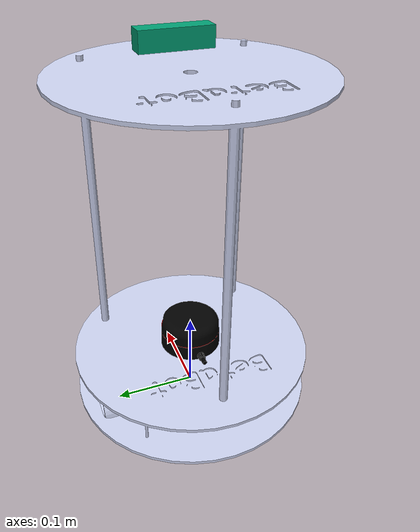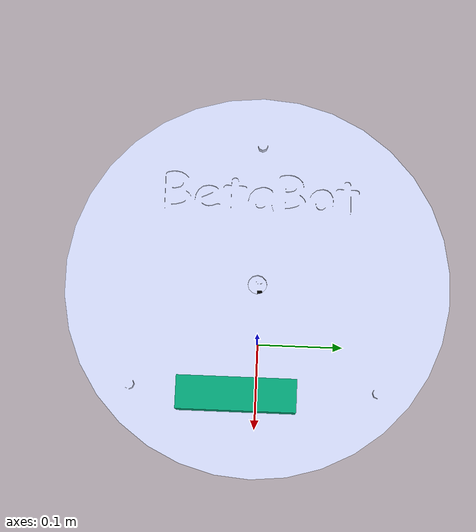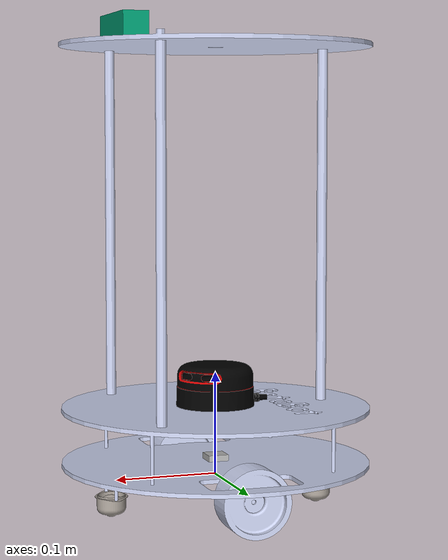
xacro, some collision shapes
<?xml version='1.0'?>

<robot name="betabot" xmlns:xacro="http://www.ros.org/wiki/xacro">

<!-- CALL HEADER FILES FOR MACROS AND GAZEBO PLUGINS -->
  <xacro:include filename="$(find betabot_description)/urdf/betabot.gazebo.xacro" />
  <xacro:include filename="$(find betabot_description)/urdf/common_properties.urdf.xacro" />
  <xacro:include filename="$(find betabot_description)/urdf/macros.xacro" />
  <xacro:include filename="$(find betabot_description)/urdf/betabot_d435_properties.urdf.xacro" />

  <xacro:property name="M_PI" value="3.1415926535897931" />

<!-- ***** BETABOT BASE PART***** -->
  <link name="base_footprint"/>

  <joint name="base_joint" type="fixed">
    <parent link="base_footprint"/>
    <child link="base_link"/>
    <origin xyz="0.0 0.0 0.01" rpy="0 0 0"/>
  </joint>

  <link name="base_link">
    <inertial>
      <origin xyz="0 0 0" rpy="0 0 0"/>
      <mass value="5.67773" />
      <inertia ixx="0.019995" ixy="0.0" ixz="0.0" iyy="0.019995" iyz="0.0" izz="0.03675" />
    </inertial>
    <visual>
      <origin xyz="0 0 0" rpy="0 0 0" />
      <geometry>
        <mesh filename="package://betabot_description/meshes/betabot_base.dae" />
      </geometry>
      <material name="">
        <color rgba="0.79608 0.82353 0.93725 1" />
      </material>
    </visual>
    <!-- COMMENT THE ORGINAL COLLISION MODEL,NEEDS MORE PROCESSING POWER -->

    <!-- SIMPLIFIED COLLISOION MESH FOR FOR SMOOTH PROCESSING -->
    <collision>
      <geometry>
        <cylinder length="0.004" radius="0.15"/>
      </geometry>
      <origin rpy="0 0 0" xyz="0  0 0.05"/>
    </collision>
  </link>

<!-- ***** BETABOT RIGHT WHEEL PART ***** -->
  <link name="right_wheel_link">
    <inertial>
      <origin xyz="0 0 0" rpy="0 0 0"/>
      <mass value="2"/>
      <inertia
        ixx=".08" ixy="0.0" ixz="0.0"
        iyy=".08" iyz="0.0"
        izz=".08"/>
    </inertial>
    <visual>
      <origin xyz="0 0 0" rpy="0 0 0" />
      <geometry>
        <mesh filename="package://betabot_description/meshes/betabot_wheel.dae" />
      </geometry>
      <material name="">
        <color rgba="0.79216 0.81961 0.93333 1" />
      </material>
    </visual>
    <collision>
      <geometry>
        <cylinder length="0.03" radius="0.0325"/>
      </geometry>
      <origin rpy="0 0 0" xyz="0 0 0.016"/>
    </collision>
  </link>

  <!-- JOINT -->
  <joint name="right_wheel_joint" type="continuous">
    <origin xyz="0 -0.097 -0.0125" rpy="-1.57079632679 1.57079632679 3.14159265359" />
    <parent link="base_link" />
    <child link="right_wheel_link" />
    <axis xyz="0 0 -1" />
  </joint>

<!-- ***** BETABOT LEFT WHEEL PART ***** -->
  <!-- LINK -->
  <link name="left_wheel_link">
    <inertial>
      <origin xyz="0 0 0" rpy="0 0 0"/>
      <mass value="2"/>
      <inertia
        ixx=".08" ixy="0.0" ixz="0.0"
        iyy=".08" iyz="0.0"
        izz=".08"/>
    </inertial>
    <visual>
      <origin xyz="0 0 0" rpy="0 0 0" />
      <geometry>
        <mesh filename="package://betabot_description/meshes/betabot_wheel.dae" />
      </geometry>
      <material name="">
        <color rgba="0.79216 0.81961 0.93333 1" />
      </material>
    </visual>
    <collision>
      <geometry>
        <cylinder length="0.03" radius="0.0325"/>
      </geometry>
      <origin rpy="0 0 0" xyz="0 0 0.016"/>
    </collision>
  </link>

  <!-- JOINT -->
  <joint name="left_wheel_joint" type="continuous">
    <origin xyz="0 0.097 -0.0125" rpy="-1.57079632679 1.57079632679 0" />
    <parent link="base_link" />
    <child link="left_wheel_link" />
    <axis xyz="0 0 1" />
  </joint>

<!-- ***** BETABOT FRONT CASTER WHEEL ***** -->
   <!-- LINK -->
  <link name="front_caster_link">
    <inertial>
      <origin xyz="0 -0.011704 0.02" rpy="0 0 0" />
      <mass value="0.005" />
      <inertia ixx="0.001" ixy="0.0" ixz="0.0"
               iyy="0.001" iyz="0.0"
               izz="0.001" />
    </inertial>
    <visual>
      <origin xyz="0 0 0" rpy="0 0 0" />
      <geometry>
        <mesh filename="package://betabot_description/meshes/betabot_caster.dae" />
      </geometry>
      <material name="">
        <color rgba="0.65098 0.61961 0.58824 1" />
      </material>
    </visual>
    <collision>
      <geometry>
         <sphere radius="0.020"/>
      </geometry>
      <origin rpy="0 0 0" xyz="0 -0.0026 0.0"/>
    </collision>
  </link>

  <!-- JOINT -->
  <joint name="front_caster_joint" type="fixed">
    <origin xyz="0.105 0 -0.02231" rpy="1.57079632679 0 1.57079632679" />
    <parent link="base_link" />
    <child link="front_caster_link" />
    <axis xyz="0 0 0" />
  </joint>

<!-- ***** BETABOT BACK CASTER WHEEL ***** -->
  <!-- LINK -->
  <link name="back_caster_link">
    <inertial>
      <origin xyz="0 0.011704 0.02" rpy="0 0 0" />
      <mass value="0.005" />
      <inertia ixx="0.001" ixy="0.0" ixz="0.0"
               iyy="0.001" iyz="0.0"
               izz="0.001" />
    </inertial>
    <visual>
      <origin xyz="0 0 0" rpy="0 0 0" />
      <geometry>
        <mesh filename="package://betabot_description/meshes/betabot_caster.dae" />
      </geometry>
      <material
        name="">
        <color rgba="0.65098 0.61961 0.58824 1" />
      </material>
    </visual>
    <collision>
      <geometry>
         <sphere radius="0.020"/>
      </geometry>
      <origin rpy="0 0 0" xyz="0 -0.0026 0"/>
    </collision>
  </link>
  <!-- JOINT -->
  <joint name="back_caster_joint" type="fixed">
    <origin xyz="-0.105 0 -0.02221" rpy="1.57079632679 0 1.57079632679" />
    <parent link="base_link" />
    <child link="back_caster_link" />
    <axis xyz="0 0 0" />
  </joint>

<!-- ***** BETABOT EXTENSION ***** -->
  <joint name="base_extension_joint" type="fixed">
    <parent link="base_link"/>
    <child link="base_extension_link"/>
    <origin xyz="0.0 0.0 0.35" rpy="0 0 0"/>
  </joint>

  <link name="base_extension_link">
    <inertial>
      <origin xyz="2.8456E-05 0.02785 0.00053742" rpy="0 0 0" />
      <mass value="0.1" />
      <inertia ixx="0.019995" ixy="0.0" ixz="0.0" iyy="0.019995" iyz="0.0" izz="0.03675" />
    </inertial>
    <visual>
      <origin xyz="0 0 0" rpy="0 0 1.5708" />
      <geometry>
        <mesh filename="package://betabot_description/meshes/betabot_extension.dae" />
      </geometry>
      <material name="">
        <color rgba="0.79608 0.82353 0.93725 1" />
      </material>
    </visual>
    <!-- COMMENT THE ORGINAL COLLISION MODEL,NEEDS MORE PROCESSING POWER -->

    <!-- SIMPLIFIED COLLISOION MESH FOR FOR SMOOTH PROCESSING -->
    <collision>
      <geometry>
        <cylinder length="0.004" radius="0.15"/>
      </geometry>
      <origin rpy="0 0 0" xyz="0  0 0.05"/>
    </collision>
  </link>

<!-- ***** RASPBERRY PI 8MB CAMERA SIMULATED PART ***** -->
  <!-- LINK -->
  <!-- JOINT -->

<!-- ***** IMU SENSOR PART ***** -->
  <!-- LINK -->
  <link name="imu_sensor_link">
      <collision>
          <origin xyz="0 0 0" rpy="0 0 0"/>
          <geometry>
              <box size="0.02 0.02 0.02"/>
          </geometry>
      </collision>
      <visual>
          <origin xyz="0 0 0" rpy="0 0 0"/>
          <geometry>
              <box size="0.02 0.02 0.02"/>
          </geometry>
      </visual>
      <inertial>
          <mass value="0.001" />
          <origin xyz="0 0 0" rpy="0 0 0"/>
          <inertia ixx="0.00000015" ixy="0" ixz="0" iyy="0.00000015" iyz="0" izz="0.00000015" />
      </inertial>
  </link>
  <!-- JOINT -->
  <joint name="imu_sensor_joint" type="fixed">
      <axis xyz="0 0 1" />
      <origin xyz="0 0 0" rpy="0 0 0"/>
      <parent link="base_link"/>
      <child link="imu_sensor_link"/>
  </joint>

<!-- ***** RPLiDAR A1 RANGE FINDER SENSOR SIMULATED PART ***** -->
  <!-- LINK -->
  <!-- JOINT -->

<!-- ***** RPLiDAR A2 RANGE FINDER SENSOR SIMULATED PART ***** -->
  <!-- LINK -->
  <link name="rplidar_link">
    <collision>
      <origin xyz="0 0 -0.03" rpy="0 0 0"/>
      <geometry>
         <sphere radius="0.045"/>
      </geometry>
    </collision>
    <visual>
      <origin xyz="0 0 -0.032" rpy="0 0 0"/>
      <geometry>
        <mesh filename="package://betabot_description/meshes/rplidar_a2.dae"/>
      </geometry>
    </visual>
    <inertial>
      <mass value="1e-5" />
      <origin xyz="0 0 0" rpy="0 0 0"/>
      <inertia ixx="1e-6" ixy="0" ixz="0" iyy="1e-6" iyz="0" izz="1e-6" />
    </inertial>
  </link>
  <!-- JOINT -->
  <joint name="rplidar_joint" type="fixed">
    <axis xyz="0 1 0" />
    <origin xyz="0 0 .109" rpy="0 0 0"/>
    <parent link="base_link"/>
    <child link="rplidar_link"/>
  </joint>

<!-- REALSENSE SIMULATED PART -->
<!-- URDF model for the Intel RealSense 430 camera, in it's aluminum peripherial evaluation case -->

    <!--~~~~~~~~ camera body, with origin at bottom screw mount ~~~~~~~~-->
    <!-- JOINT -->
    <joint name="camera_joint" type="fixed">
       <origin xyz="${cam_px} ${cam_py} ${cam_pz}" rpy="${cam_or} ${cam_op} ${cam_oy}"/>
      <parent link="${parent}"/>
      <child link="camera_bottom_screw_frame" />
    </joint>
    <link name="camera_bottom_screw_frame"/>

    <joint name="camera_link_joint" type="fixed">
      <origin xyz="0 ${d435_cam_depth_py} ${d435_cam_depth_pz}" rpy="0 0 0"/>
      <parent link="camera_bottom_screw_frame"/>
      <child link="camera_link" />
    </joint>
    <!-- LINK -->
    <link name="camera_link">
      <visual>
      <origin xyz="${d435_cam_mount_from_center_offset} ${-d435_cam_depth_py} 0" rpy="${M_PI/2} 0 ${M_PI/2}"/>
        <geometry>
          <mesh filename="package://betabot_description/meshes/d435.dae" />
        </geometry>
      </visual>
      <collision>
        <origin xyz="0 ${-d435_cam_depth_py} 0" rpy="0 0 0"/>
        <geometry>
        <box size="${d435_cam_depth} ${d435_cam_width} ${d435_cam_height}"/>
        </geometry>
      </collision>
      <inertial>
        <!-- The following are not reliable values, and should not be used for modeling -->
        <mass value="0.01" />
        <origin xyz="0 0 0" />
        <inertia ixx="0.003881243" ixy="0.0" ixz="0.0" iyy="0.000498940" iyz="0.0" izz="0.003879257" />
      </inertial>
    </link>

    <!--~~~~~~~~ camera depth joints and links ~~~~~~~~-->
    <!-- JOINT -->
    <joint name="camera_depth_joint" type="fixed">
      <origin xyz="0 0 0" rpy="0 0 0"/>
      <parent link="camera_link"/>
      <child link="camera_depth_frame" />
    </joint>
    <!-- LINK -->
    <link name="camera_depth_frame"/>

    <!-- JOINT -->
    <joint name="camera_depth_optical_joint" type="fixed">
      <origin xyz="0 0 0" rpy="${-M_PI/2} 0 ${-M_PI/2}" />
      <parent link="camera_depth_frame" />
      <child link="camera_depth_optical_frame" />
    </joint>
    <!-- LINK -->
    <link name="camera_depth_optical_frame"/>

    <!--~~~~~~~~ camera left IR joints and links ~~~~~~~~-->
    <!-- JOINT -->
    <joint name="camera_left_ir_joint" type="fixed">
      <origin xyz="0 ${d435_cam_depth_to_left_ir_offset} 0" rpy="0 0 0" />
      <parent link="camera_depth_frame" />
      <child link="camera_left_ir_frame" />
    </joint>
    <!-- LINK -->
    <link name="camera_left_ir_frame"/>

    <!-- JOINT -->
    <joint name="camera_left_ir_optical_joint" type="fixed">
      <origin xyz="0 0 0" rpy="${-M_PI/2} 0 ${-M_PI/2}" />
      <parent link="camera_left_ir_frame" />
      <child link="camera_left_ir_optical_frame" />
    </joint>
    <!-- LINK -->
    <link name="camera_left_ir_optical_frame"/>

    <!--~~~~~~~~ camera right IR joints and links ~~~~~~~~-->
    <!-- JOINT -->
    <joint name="camera_right_ir_joint" type="fixed">
      <origin xyz="0 ${d435_cam_depth_to_right_ir_offset} 0" rpy="0 0 0" />
      <parent link="camera_depth_frame" />
      <child link="camera_right_ir_frame" />
    </joint>
    <!-- LINK -->
    <link name="camera_right_ir_frame"/>

    <!-- JOINT -->
    <joint name="camera_right_ir_optical_joint" type="fixed">
      <origin xyz="0 0 0" rpy="${-M_PI/2} 0 ${-M_PI/2}" />
      <parent link="camera_right_ir_frame" />
      <child link="camera_right_ir_optical_frame" />
    </joint>
    <!-- LINK -->
    <link name="camera_right_ir_optical_frame"/>

    <!--~~~~~~~~ camera color joints and links ~~~~~~~~-->
    <!-- JOINT -->
    <joint name="camera_color_joint" type="fixed">
      <origin xyz="0 ${d435_cam_depth_to_color_offset} 0" rpy="0 0 0" />
      <parent link="camera_depth_frame" />
      <child link="camera_color_frame" />
    </joint>
    <!-- LINK -->
    <link name="camera_color_frame"/>

    <!-- JOINT -->
    <joint name="camera_color_optical_joint" type="fixed">
      <origin xyz="0 0 0" rpy="${-M_PI/2} 0 ${-M_PI/2}" />
      <parent link="camera_color_frame" />
      <child link="camera_color_optical_frame" />
    </joint>
    <!-- LINK -->
    <link name="camera_color_optical_frame"/>

</robot>

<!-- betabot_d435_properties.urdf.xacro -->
<robot name="betabot_d435_properties" xmlns:xacro="http://ros.org/wiki/xacro">

	<xacro:property name="cam_px" value="0.087" />
  <xacro:property name="cam_py" value="-0.0125" />
	<xacro:property name="cam_pz" value="0.41" />
	<xacro:property name="cam_or" value="0" />
	<xacro:property name="cam_op" value="0" />
	<xacro:property name="cam_oy" value="0" />

  <xacro:property name="parent" value="base_link"/>
  <!-- The following values are approximate, and the camera node
   publishing TF values with actual calibrated camera extrinsic values -->
  <xacro:property name="d435_cam_depth_to_left_ir_offset" value="0.0"/>
  <xacro:property name="d435_cam_depth_to_right_ir_offset" value="-0.050"/>
  <xacro:property name="d435_cam_depth_to_color_offset" value="0.015"/>

  <!-- The following values model the aluminum peripherial case for the
  D435 camera, with the camera joint represented by the actual
  peripherial camera tripod mount -->
  <xacro:property name="d435_cam_width" value="0.090"/>
  <xacro:property name="d435_cam_height" value="0.025"/>
  <xacro:property name="d435_cam_depth" value="0.02505"/>
  <xacro:property name="d435_cam_mount_from_center_offset" value="0.0149"/>

  <!-- The following offset is relative the the physical D435 camera peripherial
  camera tripod mount -->
  <xacro:property name="d435_cam_depth_px" value="${d435_cam_mount_from_center_offset}"/>
  <xacro:property name="d435_cam_depth_py" value="0.0175"/>
  <xacro:property name="d435_cam_depth_pz" value="${d435_cam_height/2}"/>

</robot>
